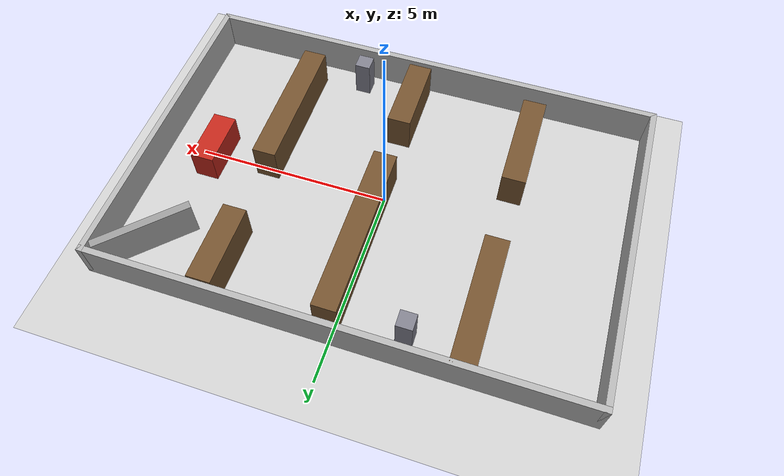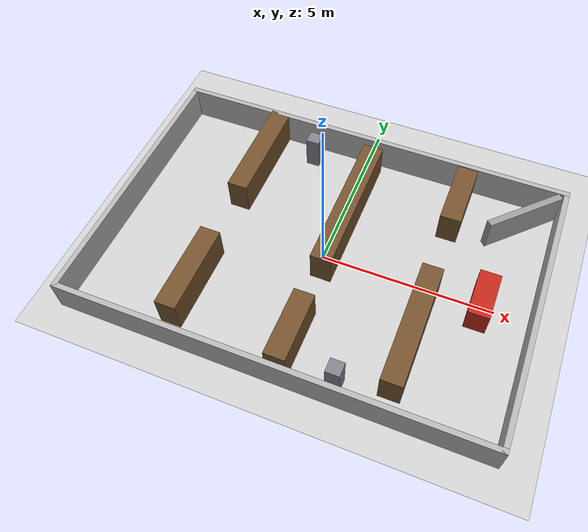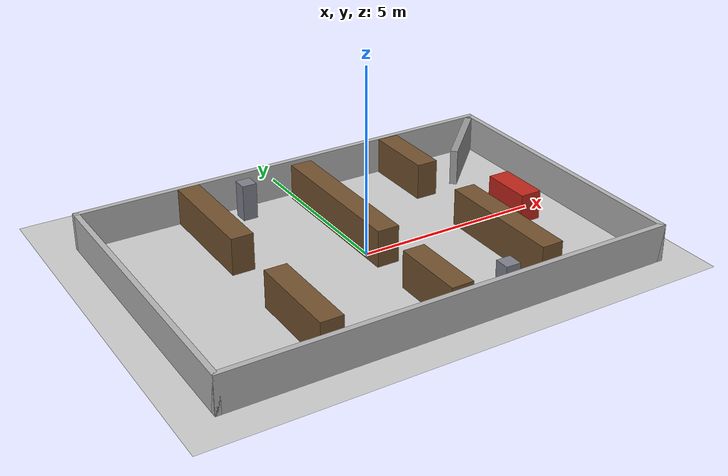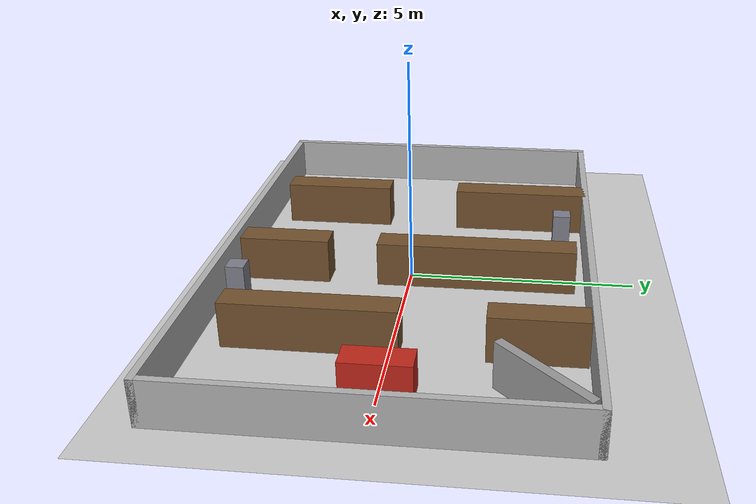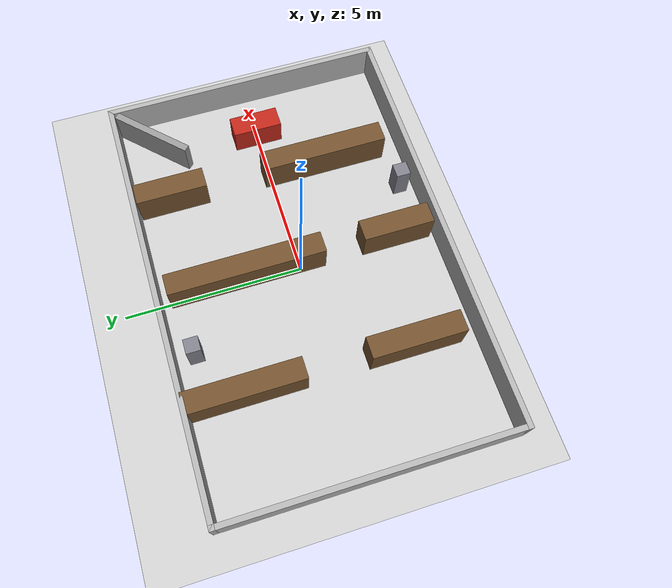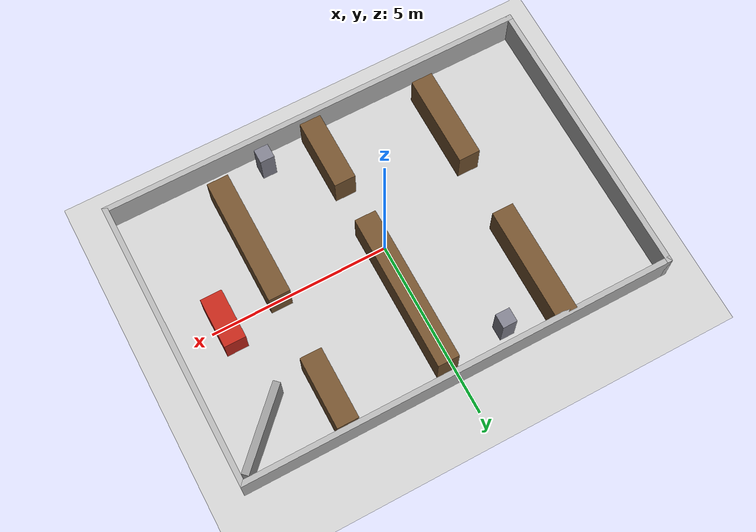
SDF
<?xml version="1.0" ?>
<sdf version="1.6">
  <world name="warehouse">

    <include><uri>model://sun</uri></include>
    <include><uri>model://ground_plane</uri></include>

    <physics type="ode">
      <max_step_size>0.004</max_step_size>
      <real_time_factor>1.0</real_time_factor>
      <real_time_update_rate>250</real_time_update_rate>
    </physics>

    <scene>
      <ambient>0.6 0.6 0.6 1</ambient>
      <shadows>false</shadows>
    </scene>

    <model name="warehouse_walls">
      <static>true</static>

      <link name="wall_north">
        <pose>0 4 0.5 0 0 0</pose>
        <collision name="c"><geometry><box><size>12.15 0.15 1.0</size></box></geometry></collision>
        <visual name="v"><geometry><box><size>12.15 0.15 1.0</size></box></geometry>
          <material><ambient>0.7 0.7 0.7 1</ambient><diffuse>0.7 0.7 0.7 1</diffuse></material>
        </visual>
      </link>

      <link name="wall_south">
        <pose>0 -4 0.5 0 0 0</pose>
        <collision name="c"><geometry><box><size>12.15 0.15 1.0</size></box></geometry></collision>
        <visual name="v"><geometry><box><size>12.15 0.15 1.0</size></box></geometry>
          <material><ambient>0.7 0.7 0.7 1</ambient><diffuse>0.7 0.7 0.7 1</diffuse></material>
        </visual>
      </link>

      <link name="wall_west">
        <pose>-6 0 0.5 0 0 0</pose>
        <collision name="c"><geometry><box><size>0.15 8.15 1.0</size></box></geometry></collision>
        <visual name="v"><geometry><box><size>0.15 8.15 1.0</size></box></geometry>
          <material><ambient>0.7 0.7 0.7 1</ambient><diffuse>0.7 0.7 0.7 1</diffuse></material>
        </visual>
      </link>

      <link name="wall_east">
        <pose>6 0 0.5 0 0 0</pose>
        <collision name="c"><geometry><box><size>0.15 8.15 1.0</size></box></geometry></collision>
        <visual name="v"><geometry><box><size>0.15 8.15 1.0</size></box></geometry>
          <material><ambient>0.7 0.7 0.7 1</ambient><diffuse>0.7 0.7 0.7 1</diffuse></material>
        </visual>
      </link>

      <link name="shelf_a1">
        <pose>-3 2.4 0.5 0 0 0</pose>
        <collision name="c"><geometry><box><size>0.6 3.2 1.0</size></box></geometry></collision>
        <visual name="v"><geometry><box><size>0.6 3.2 1.0</size></box></geometry>
          <material><ambient>0.45 0.32 0.18 1</ambient><diffuse>0.45 0.32 0.18 1</diffuse></material>
        </visual>
      </link>
      <link name="shelf_a2">
        <pose>-3 -2.2 0.5 0 0 0</pose>
        <collision name="c"><geometry><box><size>0.6 2.6 1.0</size></box></geometry></collision>
        <visual name="v"><geometry><box><size>0.6 2.6 1.0</size></box></geometry>
          <material><ambient>0.45 0.32 0.18 1</ambient><diffuse>0.45 0.32 0.18 1</diffuse></material>
        </visual>
      </link>

      <link name="shelf_b1">
        <pose>0.2 1.5 0.5 0 0 0</pose>
        <collision name="c"><geometry><box><size>0.6 4.4 1.0</size></box></geometry></collision>
        <visual name="v"><geometry><box><size>0.6 4.4 1.0</size></box></geometry>
          <material><ambient>0.45 0.32 0.18 1</ambient><diffuse>0.45 0.32 0.18 1</diffuse></material>
        </visual>
      </link>
      <link name="shelf_b2">
        <pose>0.2 -2.8 0.5 0 0 0</pose>
        <collision name="c"><geometry><box><size>0.6 2.0 1.0</size></box></geometry></collision>
        <visual name="v"><geometry><box><size>0.6 2.0 1.0</size></box></geometry>
          <material><ambient>0.45 0.32 0.18 1</ambient><diffuse>0.45 0.32 0.18 1</diffuse></material>
        </visual>
      </link>

      <link name="shelf_c1">
        <pose>3.1 2.9 0.5 0 0 0</pose>
        <collision name="c"><geometry><box><size>0.6 2.0 1.0</size></box></geometry></collision>
        <visual name="v"><geometry><box><size>0.6 2.0 1.0</size></box></geometry>
          <material><ambient>0.45 0.32 0.18 1</ambient><diffuse>0.45 0.32 0.18 1</diffuse></material>
        </visual>
      </link>
      <link name="shelf_c2">
        <pose>3.1 -1.6 0.5 0 0 0</pose>
        <collision name="c"><geometry><box><size>0.6 3.6 1.0</size></box></geometry></collision>
        <visual name="v"><geometry><box><size>0.6 3.6 1.0</size></box></geometry>
          <material><ambient>0.45 0.32 0.18 1</ambient><diffuse>0.45 0.32 0.18 1</diffuse></material>
        </visual>
      </link>

      <!-- Asymmetric landmarks. Two pillars and a chamfered corner give the
           scan matcher globally unambiguous structure to anchor on. -->
      <link name="pillar_north">
        <pose>-1.6 3.4 0.5 0 0 0</pose>
        <collision name="c"><geometry><box><size>0.4 0.4 1.0</size></box></geometry></collision>
        <visual name="v"><geometry><box><size>0.4 0.4 1.0</size></box></geometry>
          <material><ambient>0.5 0.5 0.55 1</ambient><diffuse>0.5 0.5 0.55 1</diffuse></material>
        </visual>
      </link>
      <link name="pillar_south">
        <pose>1.7 -3.5 0.5 0 0 0</pose>
        <collision name="c"><geometry><box><size>0.4 0.4 1.0</size></box></geometry></collision>
        <visual name="v"><geometry><box><size>0.4 0.4 1.0</size></box></geometry>
          <material><ambient>0.5 0.5 0.55 1</ambient><diffuse>0.5 0.5 0.55 1</diffuse></material>
        </visual>
      </link>
      <link name="corner_chamfer">
        <pose>5.0 3.0 0.5 0 0 -0.7853981</pose>
        <collision name="c"><geometry><box><size>0.2 2.4 1.0</size></box></geometry></collision>
        <visual name="v"><geometry><box><size>0.2 2.4 1.0</size></box></geometry>
          <material><ambient>0.6 0.6 0.6 1</ambient><diffuse>0.6 0.6 0.6 1</diffuse></material>
        </visual>
      </link>
    </model>

    <!-- Corridor c3 blockade: `gz model -m corridor_c3_blockade -d` removes it -->
    <model name="corridor_c3_blockade">
      <static>true</static>
      <pose>4.6 0 0.4 0 0 0</pose>
      <link name="body">
        <collision name="c"><geometry><box><size>0.6 1.4 0.8</size></box></geometry></collision>
        <visual name="v"><geometry><box><size>0.6 1.4 0.8</size></box></geometry>
          <material><ambient>0.75 0.15 0.10 1</ambient><diffuse>0.75 0.15 0.10 1</diffuse></material>
        </visual>
      </link>
    </model>

  </world>
</sdf>
